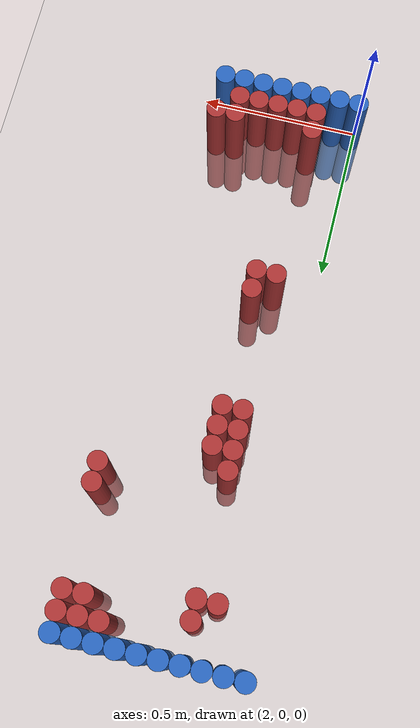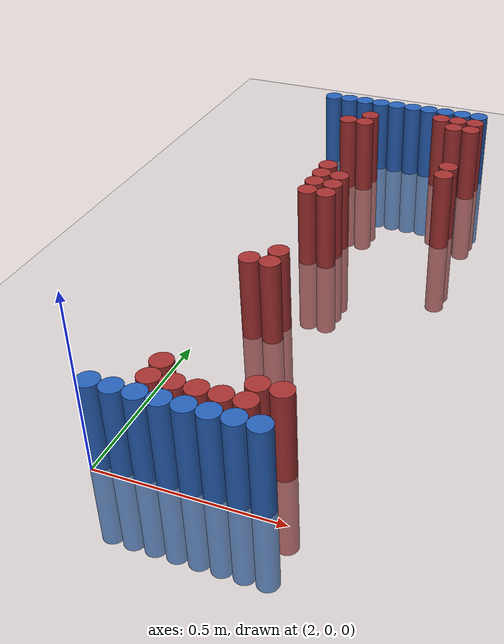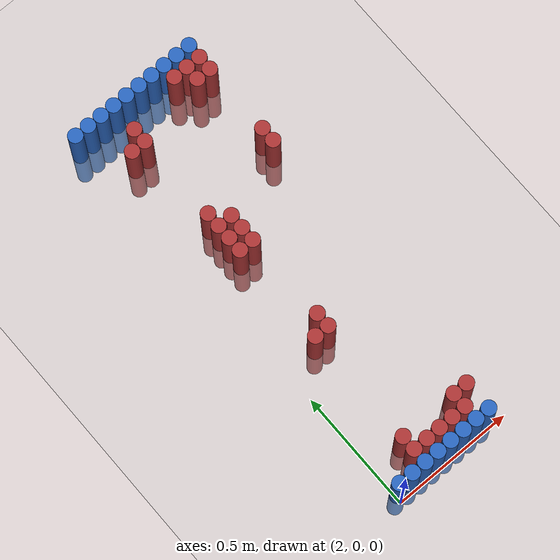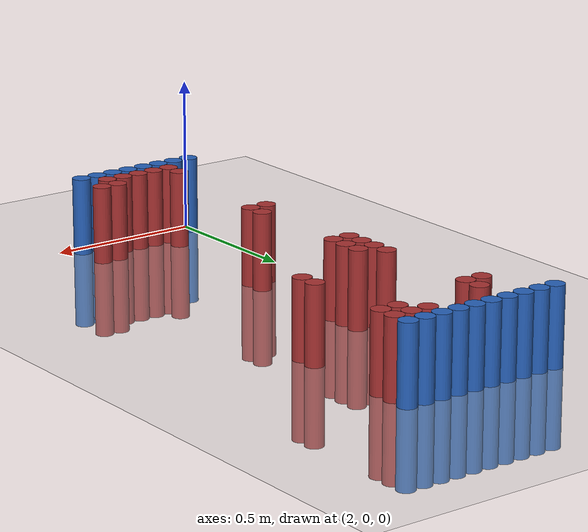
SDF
<sdf version="1.6">
 <world name="default">
  <model name="ground_plane">
   <static>1</static>
   <link name="link">
    <collision name="collision">
     <geometry><plane><normal>0 0 1</normal><size>100 100</size></plane></geometry>
     <surface><friction><ode><mu>100</mu><mu2>50</mu2></ode></friction></surface>
    </collision>
    <visual name="visual">
     <cast_shadows>0</cast_shadows>
     <geometry><plane><normal>0 0 1</normal><size>100 100</size></plane></geometry>
     <material>
      <script><uri>file://media/materials/scripts/gazebo.material</uri><name>Gazebo/Grey</name></script>
     </material>
    </visual>
   </link>
  </model>
  <model name="unit_cylinder_92">
   <static>1</static>
   <pose>1.950000 1.770000 0.000000 0.000000 0.000000 0.000000</pose>
   <link name="link">
    <inertial>
     <mass>1</mass>
     <inertia><ixx>0.145833</ixx><ixy>0</ixy><ixz>0</ixz><iyy>0.145833</iyy><iyz>0</iyz><izz>0.125</izz></inertia>
    </inertial>
    <collision name="collision">
     <geometry><cylinder><radius>0.030000</radius><length>0.5</length></cylinder></geometry>
    </collision>
    <visual name="visual">
     <geometry><cylinder><radius>0.030000</radius><length>0.5</length></cylinder></geometry>
     <material>
      <ambient>0.152000 0.379000 0.720000 1</ambient>
      <diffuse>0.152000 0.379000 0.720000 1</diffuse>
     </material>
     <material>
      <script><name>Gazebo/Grey</name><uri>file://media/materials/scripts/gazebo.material</uri></script>
     </material>
    </visual>
   </link>
  </model>
  <model name="unit_cylinder_93">
   <static>1</static>
   <pose>2.010000 0.030000 0.000000 0.000000 0.000000 0.000000</pose>
   <link name="link">
    <inertial>
     <mass>1</mass>
     <inertia><ixx>0.145833</ixx><ixy>0</ixy><ixz>0</ixz><iyy>0.145833</iyy><iyz>0</iyz><izz>0.125</izz></inertia>
    </inertial>
    <collision name="collision">
     <geometry><cylinder><radius>0.030000</radius><length>0.5</length></cylinder></geometry>
    </collision>
    <visual name="visual">
     <geometry><cylinder><radius>0.030000</radius><length>0.5</length></cylinder></geometry>
     <material>
      <ambient>0.152000 0.379000 0.720000 1</ambient>
      <diffuse>0.152000 0.379000 0.720000 1</diffuse>
     </material>
     <material>
      <script><name>Gazebo/Grey</name><uri>file://media/materials/scripts/gazebo.material</uri></script>
     </material>
    </visual>
   </link>
  </model>
  <model name="unit_cylinder_94">
   <static>1</static>
   <pose>2.010000 1.770000 0.000000 0.000000 0.000000 0.000000</pose>
   <link name="link">
    <inertial>
     <mass>1</mass>
     <inertia><ixx>0.145833</ixx><ixy>0</ixy><ixz>0</ixz><iyy>0.145833</iyy><iyz>0</iyz><izz>0.125</izz></inertia>
    </inertial>
    <collision name="collision">
     <geometry><cylinder><radius>0.030000</radius><length>0.5</length></cylinder></geometry>
    </collision>
    <visual name="visual">
     <geometry><cylinder><radius>0.030000</radius><length>0.5</length></cylinder></geometry>
     <material>
      <ambient>0.152000 0.379000 0.720000 1</ambient>
      <diffuse>0.152000 0.379000 0.720000 1</diffuse>
     </material>
     <material>
      <script><name>Gazebo/Grey</name><uri>file://media/materials/scripts/gazebo.material</uri></script>
     </material>
    </visual>
   </link>
  </model>
  <model name="unit_cylinder_95">
   <static>1</static>
   <pose>2.070000 1.770000 0.000000 0.000000 0.000000 0.000000</pose>
   <link name="link">
    <inertial>
     <mass>1</mass>
     <inertia><ixx>0.145833</ixx><ixy>0</ixy><ixz>0</ixz><iyy>0.145833</iyy><iyz>0</iyz><izz>0.125</izz></inertia>
    </inertial>
    <collision name="collision">
     <geometry><cylinder><radius>0.030000</radius><length>0.5</length></cylinder></geometry>
    </collision>
    <visual name="visual">
     <geometry><cylinder><radius>0.030000</radius><length>0.5</length></cylinder></geometry>
     <material>
      <ambient>0.152000 0.379000 0.720000 1</ambient>
      <diffuse>0.152000 0.379000 0.720000 1</diffuse>
     </material>
     <material>
      <script><name>Gazebo/Grey</name><uri>file://media/materials/scripts/gazebo.material</uri></script>
     </material>
    </visual>
   </link>
  </model>
  <model name="unit_cylinder_96">
   <static>1</static>
   <pose>2.130000 1.770000 0.000000 0.000000 0.000000 0.000000</pose>
   <link name="link">
    <inertial>
     <mass>1</mass>
     <inertia><ixx>0.145833</ixx><ixy>0</ixy><ixz>0</ixz><iyy>0.145833</iyy><iyz>0</iyz><izz>0.125</izz></inertia>
    </inertial>
    <collision name="collision">
     <geometry><cylinder><radius>0.030000</radius><length>0.5</length></cylinder></geometry>
    </collision>
    <visual name="visual">
     <geometry><cylinder><radius>0.030000</radius><length>0.5</length></cylinder></geometry>
     <material>
      <ambient>0.152000 0.379000 0.720000 1</ambient>
      <diffuse>0.152000 0.379000 0.720000 1</diffuse>
     </material>
     <material>
      <script><name>Gazebo/Grey</name><uri>file://media/materials/scripts/gazebo.material</uri></script>
     </material>
    </visual>
   </link>
  </model>
  <model name="unit_cylinder_97">
   <static>1</static>
   <pose>2.190000 1.770000 0.000000 0.000000 0.000000 0.000000</pose>
   <link name="link">
    <inertial>
     <mass>1</mass>
     <inertia><ixx>0.145833</ixx><ixy>0</ixy><ixz>0</ixz><iyy>0.145833</iyy><iyz>0</iyz><izz>0.125</izz></inertia>
    </inertial>
    <collision name="collision">
     <geometry><cylinder><radius>0.030000</radius><length>0.5</length></cylinder></geometry>
    </collision>
    <visual name="visual">
     <geometry><cylinder><radius>0.030000</radius><length>0.5</length></cylinder></geometry>
     <material>
      <ambient>0.152000 0.379000 0.720000 1</ambient>
      <diffuse>0.152000 0.379000 0.720000 1</diffuse>
     </material>
     <material>
      <script><name>Gazebo/Grey</name><uri>file://media/materials/scripts/gazebo.material</uri></script>
     </material>
    </visual>
   </link>
  </model>
  <model name="unit_cylinder_98">
   <static>1</static>
   <pose>2.250000 1.770000 0.000000 0.000000 0.000000 0.000000</pose>
   <link name="link">
    <inertial>
     <mass>1</mass>
     <inertia><ixx>0.145833</ixx><ixy>0</ixy><ixz>0</ixz><iyy>0.145833</iyy><iyz>0</iyz><izz>0.125</izz></inertia>
    </inertial>
    <collision name="collision">
     <geometry><cylinder><radius>0.030000</radius><length>0.5</length></cylinder></geometry>
    </collision>
    <visual name="visual">
     <geometry><cylinder><radius>0.030000</radius><length>0.5</length></cylinder></geometry>
     <material>
      <ambient>0.152000 0.379000 0.720000 1</ambient>
      <diffuse>0.152000 0.379000 0.720000 1</diffuse>
     </material>
     <material>
      <script><name>Gazebo/Grey</name><uri>file://media/materials/scripts/gazebo.material</uri></script>
     </material>
    </visual>
   </link>
  </model>
  <model name="unit_cylinder_99">
   <static>1</static>
   <pose>2.310000 1.770000 0.000000 0.000000 0.000000 0.000000</pose>
   <link name="link">
    <inertial>
     <mass>1</mass>
     <inertia><ixx>0.145833</ixx><ixy>0</ixy><ixz>0</ixz><iyy>0.145833</iyy><iyz>0</iyz><izz>0.125</izz></inertia>
    </inertial>
    <collision name="collision">
     <geometry><cylinder><radius>0.030000</radius><length>0.5</length></cylinder></geometry>
    </collision>
    <visual name="visual">
     <geometry><cylinder><radius>0.030000</radius><length>0.5</length></cylinder></geometry>
     <material>
      <ambient>0.152000 0.379000 0.720000 1</ambient>
      <diffuse>0.152000 0.379000 0.720000 1</diffuse>
     </material>
     <material>
      <script><name>Gazebo/Grey</name><uri>file://media/materials/scripts/gazebo.material</uri></script>
     </material>
    </visual>
   </link>
  </model>
  <model name="unit_cylinder_100">
   <static>1</static>
   <pose>2.370000 1.770000 0.000000 0.000000 0.000000 0.000000</pose>
   <link name="link">
    <inertial>
     <mass>1</mass>
     <inertia><ixx>0.145833</ixx><ixy>0</ixy><ixz>0</ixz><iyy>0.145833</iyy><iyz>0</iyz><izz>0.125</izz></inertia>
    </inertial>
    <collision name="collision">
     <geometry><cylinder><radius>0.030000</radius><length>0.5</length></cylinder></geometry>
    </collision>
    <visual name="visual">
     <geometry><cylinder><radius>0.030000</radius><length>0.5</length></cylinder></geometry>
     <material>
      <ambient>0.152000 0.379000 0.720000 1</ambient>
      <diffuse>0.152000 0.379000 0.720000 1</diffuse>
     </material>
     <material>
      <script><name>Gazebo/Grey</name><uri>file://media/materials/scripts/gazebo.material</uri></script>
     </material>
    </visual>
   </link>
  </model>
  <model name="unit_cylinder_101">
   <static>1</static>
   <pose>2.430000 1.770000 0.000000 0.000000 0.000000 0.000000</pose>
   <link name="link">
    <inertial>
     <mass>1</mass>
     <inertia><ixx>0.145833</ixx><ixy>0</ixy><ixz>0</ixz><iyy>0.145833</iyy><iyz>0</iyz><izz>0.125</izz></inertia>
    </inertial>
    <collision name="collision">
     <geometry><cylinder><radius>0.030000</radius><length>0.5</length></cylinder></geometry>
    </collision>
    <visual name="visual">
     <geometry><cylinder><radius>0.030000</radius><length>0.5</length></cylinder></geometry>
     <material>
      <ambient>0.152000 0.379000 0.720000 1</ambient>
      <diffuse>0.152000 0.379000 0.720000 1</diffuse>
     </material>
     <material>
      <script><name>Gazebo/Grey</name><uri>file://media/materials/scripts/gazebo.material</uri></script>
     </material>
    </visual>
   </link>
  </model>
  <model name="unit_cylinder_102">
   <static>1</static>
   <pose>2.490000 1.770000 0.000000 0.000000 0.000000 0.000000</pose>
   <link name="link">
    <inertial>
     <mass>1</mass>
     <inertia><ixx>0.145833</ixx><ixy>0</ixy><ixz>0</ixz><iyy>0.145833</iyy><iyz>0</iyz><izz>0.125</izz></inertia>
    </inertial>
    <collision name="collision">
     <geometry><cylinder><radius>0.030000</radius><length>0.5</length></cylinder></geometry>
    </collision>
    <visual name="visual">
     <geometry><cylinder><radius>0.030000</radius><length>0.5</length></cylinder></geometry>
     <material>
      <ambient>0.152000 0.379000 0.720000 1</ambient>
      <diffuse>0.152000 0.379000 0.720000 1</diffuse>
     </material>
     <material>
      <script><name>Gazebo/Grey</name><uri>file://media/materials/scripts/gazebo.material</uri></script>
     </material>
    </visual>
   </link>
  </model>
  <model name="unit_cylinder_125">
   <static>1</static>
   <pose>2.370000 1.710000 0.000000 0.000000 0.000000 0.000000</pose>
   <link name="link">
    <inertial>
     <mass>1</mass>
     <inertia><ixx>0.145833</ixx><ixy>0</ixy><ixz>0</ixz><iyy>0.145833</iyy><iyz>0</iyz><izz>0.125</izz></inertia>
    </inertial>
    <collision name="collision">
     <geometry><cylinder><radius>0.030000</radius><length>0.5</length></cylinder></geometry>
    </collision>
    <visual name="visual">
     <geometry><cylinder><radius>0.030000</radius><length>0.5</length></cylinder></geometry>
     <material>
      <ambient>0.648000 0.192000 0.192000 1</ambient>
      <diffuse>0.648000 0.192000 0.192000 1</diffuse>
     </material>
     <material>
      <script><name>Gazebo/Grey</name><uri>file://media/materials/scripts/gazebo.material</uri></script>
     </material>
    </visual>
   </link>
  </model>
  <model name="unit_cylinder_126">
   <static>1</static>
   <pose>2.430000 1.710000 0.000000 0.000000 0.000000 0.000000</pose>
   <link name="link">
    <inertial>
     <mass>1</mass>
     <inertia><ixx>0.145833</ixx><ixy>0</ixy><ixz>0</ixz><iyy>0.145833</iyy><iyz>0</iyz><izz>0.125</izz></inertia>
    </inertial>
    <collision name="collision">
     <geometry><cylinder><radius>0.030000</radius><length>0.5</length></cylinder></geometry>
    </collision>
    <visual name="visual">
     <geometry><cylinder><radius>0.030000</radius><length>0.5</length></cylinder></geometry>
     <material>
      <ambient>0.648000 0.192000 0.192000 1</ambient>
      <diffuse>0.648000 0.192000 0.192000 1</diffuse>
     </material>
     <material>
      <script><name>Gazebo/Grey</name><uri>file://media/materials/scripts/gazebo.material</uri></script>
     </material>
    </visual>
   </link>
  </model>
  <model name="unit_cylinder_127">
   <static>1</static>
   <pose>2.490000 1.710000 0.000000 0.000000 0.000000 0.000000</pose>
   <link name="link">
    <inertial>
     <mass>1</mass>
     <inertia><ixx>0.145833</ixx><ixy>0</ixy><ixz>0</ixz><iyy>0.145833</iyy><iyz>0</iyz><izz>0.125</izz></inertia>
    </inertial>
    <collision name="collision">
     <geometry><cylinder><radius>0.030000</radius><length>0.5</length></cylinder></geometry>
    </collision>
    <visual name="visual">
     <geometry><cylinder><radius>0.030000</radius><length>0.5</length></cylinder></geometry>
     <material>
      <ambient>0.648000 0.192000 0.192000 1</ambient>
      <diffuse>0.648000 0.192000 0.192000 1</diffuse>
     </material>
     <material>
      <script><name>Gazebo/Grey</name><uri>file://media/materials/scripts/gazebo.material</uri></script>
     </material>
    </visual>
   </link>
  </model>
  <model name="unit_cylinder_135">
   <static>1</static>
   <pose>2.130000 1.650000 0.000000 0.000000 0.000000 0.000000</pose>
   <link name="link">
    <inertial>
     <mass>1</mass>
     <inertia><ixx>0.145833</ixx><ixy>0</ixy><ixz>0</ixz><iyy>0.145833</iyy><iyz>0</iyz><izz>0.125</izz></inertia>
    </inertial>
    <collision name="collision">
     <geometry><cylinder><radius>0.030000</radius><length>0.5</length></cylinder></geometry>
    </collision>
    <visual name="visual">
     <geometry><cylinder><radius>0.030000</radius><length>0.5</length></cylinder></geometry>
     <material>
      <ambient>0.648000 0.192000 0.192000 1</ambient>
      <diffuse>0.648000 0.192000 0.192000 1</diffuse>
     </material>
     <material>
      <script><name>Gazebo/Grey</name><uri>file://media/materials/scripts/gazebo.material</uri></script>
     </material>
    </visual>
   </link>
  </model>
  <model name="unit_cylinder_136">
   <static>1</static>
   <pose>2.430000 1.650000 0.000000 0.000000 0.000000 0.000000</pose>
   <link name="link">
    <inertial>
     <mass>1</mass>
     <inertia><ixx>0.145833</ixx><ixy>0</ixy><ixz>0</ixz><iyy>0.145833</iyy><iyz>0</iyz><izz>0.125</izz></inertia>
    </inertial>
    <collision name="collision">
     <geometry><cylinder><radius>0.030000</radius><length>0.5</length></cylinder></geometry>
    </collision>
    <visual name="visual">
     <geometry><cylinder><radius>0.030000</radius><length>0.5</length></cylinder></geometry>
     <material>
      <ambient>0.648000 0.192000 0.192000 1</ambient>
      <diffuse>0.648000 0.192000 0.192000 1</diffuse>
     </material>
     <material>
      <script><name>Gazebo/Grey</name><uri>file://media/materials/scripts/gazebo.material</uri></script>
     </material>
    </visual>
   </link>
  </model>
  <model name="unit_cylinder_137">
   <static>1</static>
   <pose>2.490000 1.650000 0.000000 0.000000 0.000000 0.000000</pose>
   <link name="link">
    <inertial>
     <mass>1</mass>
     <inertia><ixx>0.145833</ixx><ixy>0</ixy><ixz>0</ixz><iyy>0.145833</iyy><iyz>0</iyz><izz>0.125</izz></inertia>
    </inertial>
    <collision name="collision">
     <geometry><cylinder><radius>0.030000</radius><length>0.5</length></cylinder></geometry>
    </collision>
    <visual name="visual">
     <geometry><cylinder><radius>0.030000</radius><length>0.5</length></cylinder></geometry>
     <material>
      <ambient>0.648000 0.192000 0.192000 1</ambient>
      <diffuse>0.648000 0.192000 0.192000 1</diffuse>
     </material>
     <material>
      <script><name>Gazebo/Grey</name><uri>file://media/materials/scripts/gazebo.material</uri></script>
     </material>
    </visual>
   </link>
  </model>
  <model name="unit_cylinder_141">
   <static>1</static>
   <pose>2.070000 1.590000 0.000000 0.000000 0.000000 0.000000</pose>
   <link name="link">
    <inertial>
     <mass>1</mass>
     <inertia><ixx>0.145833</ixx><ixy>0</ixy><ixz>0</ixz><iyy>0.145833</iyy><iyz>0</iyz><izz>0.125</izz></inertia>
    </inertial>
    <collision name="collision">
     <geometry><cylinder><radius>0.030000</radius><length>0.5</length></cylinder></geometry>
    </collision>
    <visual name="visual">
     <geometry><cylinder><radius>0.030000</radius><length>0.5</length></cylinder></geometry>
     <material>
      <ambient>0.648000 0.192000 0.192000 1</ambient>
      <diffuse>0.648000 0.192000 0.192000 1</diffuse>
     </material>
     <material>
      <script><name>Gazebo/Grey</name><uri>file://media/materials/scripts/gazebo.material</uri></script>
     </material>
    </visual>
   </link>
  </model>
  <model name="unit_cylinder_142">
   <static>1</static>
   <pose>2.130000 1.590000 0.000000 0.000000 0.000000 0.000000</pose>
   <link name="link">
    <inertial>
     <mass>1</mass>
     <inertia><ixx>0.145833</ixx><ixy>0</ixy><ixz>0</ixz><iyy>0.145833</iyy><iyz>0</iyz><izz>0.125</izz></inertia>
    </inertial>
    <collision name="collision">
     <geometry><cylinder><radius>0.030000</radius><length>0.5</length></cylinder></geometry>
    </collision>
    <visual name="visual">
     <geometry><cylinder><radius>0.030000</radius><length>0.5</length></cylinder></geometry>
     <material>
      <ambient>0.648000 0.192000 0.192000 1</ambient>
      <diffuse>0.648000 0.192000 0.192000 1</diffuse>
     </material>
     <material>
      <script><name>Gazebo/Grey</name><uri>file://media/materials/scripts/gazebo.material</uri></script>
     </material>
    </visual>
   </link>
  </model>
  <model name="unit_cylinder_160">
   <static>1</static>
   <pose>2.490000 1.350000 0.000000 0.000000 0.000000 0.000000</pose>
   <link name="link">
    <inertial>
     <mass>1</mass>
     <inertia><ixx>0.145833</ixx><ixy>0</ixy><ixz>0</ixz><iyy>0.145833</iyy><iyz>0</iyz><izz>0.125</izz></inertia>
    </inertial>
    <collision name="collision">
     <geometry><cylinder><radius>0.030000</radius><length>0.5</length></cylinder></geometry>
    </collision>
    <visual name="visual">
     <geometry><cylinder><radius>0.030000</radius><length>0.5</length></cylinder></geometry>
     <material>
      <ambient>0.648000 0.192000 0.192000 1</ambient>
      <diffuse>0.648000 0.192000 0.192000 1</diffuse>
     </material>
     <material>
      <script><name>Gazebo/Grey</name><uri>file://media/materials/scripts/gazebo.material</uri></script>
     </material>
    </visual>
   </link>
  </model>
  <model name="unit_cylinder_169">
   <static>1</static>
   <pose>2.490000 1.290000 0.000000 0.000000 0.000000 0.000000</pose>
   <link name="link">
    <inertial>
     <mass>1</mass>
     <inertia><ixx>0.145833</ixx><ixy>0</ixy><ixz>0</ixz><iyy>0.145833</iyy><iyz>0</iyz><izz>0.125</izz></inertia>
    </inertial>
    <collision name="collision">
     <geometry><cylinder><radius>0.030000</radius><length>0.5</length></cylinder></geometry>
    </collision>
    <visual name="visual">
     <geometry><cylinder><radius>0.030000</radius><length>0.5</length></cylinder></geometry>
     <material>
      <ambient>0.648000 0.192000 0.192000 1</ambient>
      <diffuse>0.648000 0.192000 0.192000 1</diffuse>
     </material>
     <material>
      <script><name>Gazebo/Grey</name><uri>file://media/materials/scripts/gazebo.material</uri></script>
     </material>
    </visual>
   </link>
  </model>
  <model name="unit_cylinder_179">
   <static>1</static>
   <pose>2.130000 1.230000 0.000000 0.000000 0.000000 0.000000</pose>
   <link name="link">
    <inertial>
     <mass>1</mass>
     <inertia><ixx>0.145833</ixx><ixy>0</ixy><ixz>0</ixz><iyy>0.145833</iyy><iyz>0</iyz><izz>0.125</izz></inertia>
    </inertial>
    <collision name="collision">
     <geometry><cylinder><radius>0.030000</radius><length>0.5</length></cylinder></geometry>
    </collision>
    <visual name="visual">
     <geometry><cylinder><radius>0.030000</radius><length>0.5</length></cylinder></geometry>
     <material>
      <ambient>0.648000 0.192000 0.192000 1</ambient>
      <diffuse>0.648000 0.192000 0.192000 1</diffuse>
     </material>
     <material>
      <script><name>Gazebo/Grey</name><uri>file://media/materials/scripts/gazebo.material</uri></script>
     </material>
    </visual>
   </link>
  </model>
  <model name="unit_cylinder_189">
   <static>1</static>
   <pose>2.130000 1.170000 0.000000 0.000000 0.000000 0.000000</pose>
   <link name="link">
    <inertial>
     <mass>1</mass>
     <inertia><ixx>0.145833</ixx><ixy>0</ixy><ixz>0</ixz><iyy>0.145833</iyy><iyz>0</iyz><izz>0.125</izz></inertia>
    </inertial>
    <collision name="collision">
     <geometry><cylinder><radius>0.030000</radius><length>0.5</length></cylinder></geometry>
    </collision>
    <visual name="visual">
     <geometry><cylinder><radius>0.030000</radius><length>0.5</length></cylinder></geometry>
     <material>
      <ambient>0.648000 0.192000 0.192000 1</ambient>
      <diffuse>0.648000 0.192000 0.192000 1</diffuse>
     </material>
     <material>
      <script><name>Gazebo/Grey</name><uri>file://media/materials/scripts/gazebo.material</uri></script>
     </material>
    </visual>
   </link>
  </model>
  <model name="unit_cylinder_190">
   <static>1</static>
   <pose>2.190000 1.170000 0.000000 0.000000 0.000000 0.000000</pose>
   <link name="link">
    <inertial>
     <mass>1</mass>
     <inertia><ixx>0.145833</ixx><ixy>0</ixy><ixz>0</ixz><iyy>0.145833</iyy><iyz>0</iyz><izz>0.125</izz></inertia>
    </inertial>
    <collision name="collision">
     <geometry><cylinder><radius>0.030000</radius><length>0.5</length></cylinder></geometry>
    </collision>
    <visual name="visual">
     <geometry><cylinder><radius>0.030000</radius><length>0.5</length></cylinder></geometry>
     <material>
      <ambient>0.648000 0.192000 0.192000 1</ambient>
      <diffuse>0.648000 0.192000 0.192000 1</diffuse>
     </material>
     <material>
      <script><name>Gazebo/Grey</name><uri>file://media/materials/scripts/gazebo.material</uri></script>
     </material>
    </visual>
   </link>
  </model>
  <model name="unit_cylinder_199">
   <static>1</static>
   <pose>2.130000 1.110000 0.000000 0.000000 0.000000 0.000000</pose>
   <link name="link">
    <inertial>
     <mass>1</mass>
     <inertia><ixx>0.145833</ixx><ixy>0</ixy><ixz>0</ixz><iyy>0.145833</iyy><iyz>0</iyz><izz>0.125</izz></inertia>
    </inertial>
    <collision name="collision">
     <geometry><cylinder><radius>0.030000</radius><length>0.5</length></cylinder></geometry>
    </collision>
    <visual name="visual">
     <geometry><cylinder><radius>0.030000</radius><length>0.5</length></cylinder></geometry>
     <material>
      <ambient>0.648000 0.192000 0.192000 1</ambient>
      <diffuse>0.648000 0.192000 0.192000 1</diffuse>
     </material>
     <material>
      <script><name>Gazebo/Grey</name><uri>file://media/materials/scripts/gazebo.material</uri></script>
     </material>
    </visual>
   </link>
  </model>
  <model name="unit_cylinder_200">
   <static>1</static>
   <pose>2.190000 1.110000 0.000000 0.000000 0.000000 0.000000</pose>
   <link name="link">
    <inertial>
     <mass>1</mass>
     <inertia><ixx>0.145833</ixx><ixy>0</ixy><ixz>0</ixz><iyy>0.145833</iyy><iyz>0</iyz><izz>0.125</izz></inertia>
    </inertial>
    <collision name="collision">
     <geometry><cylinder><radius>0.030000</radius><length>0.5</length></cylinder></geometry>
    </collision>
    <visual name="visual">
     <geometry><cylinder><radius>0.030000</radius><length>0.5</length></cylinder></geometry>
     <material>
      <ambient>0.648000 0.192000 0.192000 1</ambient>
      <diffuse>0.648000 0.192000 0.192000 1</diffuse>
     </material>
     <material>
      <script><name>Gazebo/Grey</name><uri>file://media/materials/scripts/gazebo.material</uri></script>
     </material>
    </visual>
   </link>
  </model>
  <model name="unit_cylinder_203">
   <static>1</static>
   <pose>2.130000 1.050000 0.000000 0.000000 0.000000 0.000000</pose>
   <link name="link">
    <inertial>
     <mass>1</mass>
     <inertia><ixx>0.145833</ixx><ixy>0</ixy><ixz>0</ixz><iyy>0.145833</iyy><iyz>0</iyz><izz>0.125</izz></inertia>
    </inertial>
    <collision name="collision">
     <geometry><cylinder><radius>0.030000</radius><length>0.5</length></cylinder></geometry>
    </collision>
    <visual name="visual">
     <geometry><cylinder><radius>0.030000</radius><length>0.5</length></cylinder></geometry>
     <material>
      <ambient>0.648000 0.192000 0.192000 1</ambient>
      <diffuse>0.648000 0.192000 0.192000 1</diffuse>
     </material>
     <material>
      <script><name>Gazebo/Grey</name><uri>file://media/materials/scripts/gazebo.material</uri></script>
     </material>
    </visual>
   </link>
  </model>
  <model name="unit_cylinder_204">
   <static>1</static>
   <pose>2.190000 1.050000 0.000000 0.000000 0.000000 0.000000</pose>
   <link name="link">
    <inertial>
     <mass>1</mass>
     <inertia><ixx>0.145833</ixx><ixy>0</ixy><ixz>0</ixz><iyy>0.145833</iyy><iyz>0</iyz><izz>0.125</izz></inertia>
    </inertial>
    <collision name="collision">
     <geometry><cylinder><radius>0.030000</radius><length>0.5</length></cylinder></geometry>
    </collision>
    <visual name="visual">
     <geometry><cylinder><radius>0.030000</radius><length>0.5</length></cylinder></geometry>
     <material>
      <ambient>0.648000 0.192000 0.192000 1</ambient>
      <diffuse>0.648000 0.192000 0.192000 1</diffuse>
     </material>
     <material>
      <script><name>Gazebo/Grey</name><uri>file://media/materials/scripts/gazebo.material</uri></script>
     </material>
    </visual>
   </link>
  </model>
  <model name="unit_cylinder_209">
   <static>1</static>
   <pose>2.190000 0.690000 0.000000 0.000000 0.000000 0.000000</pose>
   <link name="link">
    <inertial>
     <mass>1</mass>
     <inertia><ixx>0.145833</ixx><ixy>0</ixy><ixz>0</ixz><iyy>0.145833</iyy><iyz>0</iyz><izz>0.125</izz></inertia>
    </inertial>
    <collision name="collision">
     <geometry><cylinder><radius>0.030000</radius><length>0.5</length></cylinder></geometry>
    </collision>
    <visual name="visual">
     <geometry><cylinder><radius>0.030000</radius><length>0.5</length></cylinder></geometry>
     <material>
      <ambient>0.648000 0.192000 0.192000 1</ambient>
      <diffuse>0.648000 0.192000 0.192000 1</diffuse>
     </material>
     <material>
      <script><name>Gazebo/Grey</name><uri>file://media/materials/scripts/gazebo.material</uri></script>
     </material>
    </visual>
   </link>
  </model>
  <model name="unit_cylinder_210">
   <static>1</static>
   <pose>2.130000 0.630000 0.000000 0.000000 0.000000 0.000000</pose>
   <link name="link">
    <inertial>
     <mass>1</mass>
     <inertia><ixx>0.145833</ixx><ixy>0</ixy><ixz>0</ixz><iyy>0.145833</iyy><iyz>0</iyz><izz>0.125</izz></inertia>
    </inertial>
    <collision name="collision">
     <geometry><cylinder><radius>0.030000</radius><length>0.5</length></cylinder></geometry>
    </collision>
    <visual name="visual">
     <geometry><cylinder><radius>0.030000</radius><length>0.5</length></cylinder></geometry>
     <material>
      <ambient>0.648000 0.192000 0.192000 1</ambient>
      <diffuse>0.648000 0.192000 0.192000 1</diffuse>
     </material>
     <material>
      <script><name>Gazebo/Grey</name><uri>file://media/materials/scripts/gazebo.material</uri></script>
     </material>
    </visual>
   </link>
  </model>
  <model name="unit_cylinder_211">
   <static>1</static>
   <pose>2.190000 0.630000 0.000000 0.000000 0.000000 0.000000</pose>
   <link name="link">
    <inertial>
     <mass>1</mass>
     <inertia><ixx>0.145833</ixx><ixy>0</ixy><ixz>0</ixz><iyy>0.145833</iyy><iyz>0</iyz><izz>0.125</izz></inertia>
    </inertial>
    <collision name="collision">
     <geometry><cylinder><radius>0.030000</radius><length>0.5</length></cylinder></geometry>
    </collision>
    <visual name="visual">
     <geometry><cylinder><radius>0.030000</radius><length>0.5</length></cylinder></geometry>
     <material>
      <ambient>0.648000 0.192000 0.192000 1</ambient>
      <diffuse>0.648000 0.192000 0.192000 1</diffuse>
     </material>
     <material>
      <script><name>Gazebo/Grey</name><uri>file://media/materials/scripts/gazebo.material</uri></script>
     </material>
    </visual>
   </link>
  </model>
  <model name="unit_cylinder_219">
   <static>1</static>
   <pose>2.130000 0.150000 0.000000 0.000000 0.000000 0.000000</pose>
   <link name="link">
    <inertial>
     <mass>1</mass>
     <inertia><ixx>0.145833</ixx><ixy>0</ixy><ixz>0</ixz><iyy>0.145833</iyy><iyz>0</iyz><izz>0.125</izz></inertia>
    </inertial>
    <collision name="collision">
     <geometry><cylinder><radius>0.030000</radius><length>0.5</length></cylinder></geometry>
    </collision>
    <visual name="visual">
     <geometry><cylinder><radius>0.030000</radius><length>0.5</length></cylinder></geometry>
     <material>
      <ambient>0.648000 0.192000 0.192000 1</ambient>
      <diffuse>0.648000 0.192000 0.192000 1</diffuse>
     </material>
     <material>
      <script><name>Gazebo/Grey</name><uri>file://media/materials/scripts/gazebo.material</uri></script>
     </material>
    </visual>
   </link>
  </model>
  <model name="unit_cylinder_220">
   <static>1</static>
   <pose>2.370000 0.150000 0.000000 0.000000 0.000000 0.000000</pose>
   <link name="link">
    <inertial>
     <mass>1</mass>
     <inertia><ixx>0.145833</ixx><ixy>0</ixy><ixz>0</ixz><iyy>0.145833</iyy><iyz>0</iyz><izz>0.125</izz></inertia>
    </inertial>
    <collision name="collision">
     <geometry><cylinder><radius>0.030000</radius><length>0.5</length></cylinder></geometry>
    </collision>
    <visual name="visual">
     <geometry><cylinder><radius>0.030000</radius><length>0.5</length></cylinder></geometry>
     <material>
      <ambient>0.648000 0.192000 0.192000 1</ambient>
      <diffuse>0.648000 0.192000 0.192000 1</diffuse>
     </material>
     <material>
      <script><name>Gazebo/Grey</name><uri>file://media/materials/scripts/gazebo.material</uri></script>
     </material>
    </visual>
   </link>
  </model>
  <model name="unit_cylinder_221">
   <static>1</static>
   <pose>2.430000 0.150000 0.000000 0.000000 0.000000 0.000000</pose>
   <link name="link">
    <inertial>
     <mass>1</mass>
     <inertia><ixx>0.145833</ixx><ixy>0</ixy><ixz>0</ixz><iyy>0.145833</iyy><iyz>0</iyz><izz>0.125</izz></inertia>
    </inertial>
    <collision name="collision">
     <geometry><cylinder><radius>0.030000</radius><length>0.5</length></cylinder></geometry>
    </collision>
    <visual name="visual">
     <geometry><cylinder><radius>0.030000</radius><length>0.5</length></cylinder></geometry>
     <material>
      <ambient>0.648000 0.192000 0.192000 1</ambient>
      <diffuse>0.648000 0.192000 0.192000 1</diffuse>
     </material>
     <material>
      <script><name>Gazebo/Grey</name><uri>file://media/materials/scripts/gazebo.material</uri></script>
     </material>
    </visual>
   </link>
  </model>
  <model name="unit_cylinder_229">
   <static>1</static>
   <pose>2.130000 0.090000 0.000000 0.000000 0.000000 0.000000</pose>
   <link name="link">
    <inertial>
     <mass>1</mass>
     <inertia><ixx>0.145833</ixx><ixy>0</ixy><ixz>0</ixz><iyy>0.145833</iyy><iyz>0</iyz><izz>0.125</izz></inertia>
    </inertial>
    <collision name="collision">
     <geometry><cylinder><radius>0.030000</radius><length>0.5</length></cylinder></geometry>
    </collision>
    <visual name="visual">
     <geometry><cylinder><radius>0.030000</radius><length>0.5</length></cylinder></geometry>
     <material>
      <ambient>0.648000 0.192000 0.192000 1</ambient>
      <diffuse>0.648000 0.192000 0.192000 1</diffuse>
     </material>
     <material>
      <script><name>Gazebo/Grey</name><uri>file://media/materials/scripts/gazebo.material</uri></script>
     </material>
    </visual>
   </link>
  </model>
  <model name="unit_cylinder_230">
   <static>1</static>
   <pose>2.190000 0.090000 0.000000 0.000000 0.000000 0.000000</pose>
   <link name="link">
    <inertial>
     <mass>1</mass>
     <inertia><ixx>0.145833</ixx><ixy>0</ixy><ixz>0</ixz><iyy>0.145833</iyy><iyz>0</iyz><izz>0.125</izz></inertia>
    </inertial>
    <collision name="collision">
     <geometry><cylinder><radius>0.030000</radius><length>0.5</length></cylinder></geometry>
    </collision>
    <visual name="visual">
     <geometry><cylinder><radius>0.030000</radius><length>0.5</length></cylinder></geometry>
     <material>
      <ambient>0.648000 0.192000 0.192000 1</ambient>
      <diffuse>0.648000 0.192000 0.192000 1</diffuse>
     </material>
     <material>
      <script><name>Gazebo/Grey</name><uri>file://media/materials/scripts/gazebo.material</uri></script>
     </material>
    </visual>
   </link>
  </model>
  <model name="unit_cylinder_231">
   <static>1</static>
   <pose>2.250000 0.090000 0.000000 0.000000 0.000000 0.000000</pose>
   <link name="link">
    <inertial>
     <mass>1</mass>
     <inertia><ixx>0.145833</ixx><ixy>0</ixy><ixz>0</ixz><iyy>0.145833</iyy><iyz>0</iyz><izz>0.125</izz></inertia>
    </inertial>
    <collision name="collision">
     <geometry><cylinder><radius>0.030000</radius><length>0.5</length></cylinder></geometry>
    </collision>
    <visual name="visual">
     <geometry><cylinder><radius>0.030000</radius><length>0.5</length></cylinder></geometry>
     <material>
      <ambient>0.648000 0.192000 0.192000 1</ambient>
      <diffuse>0.648000 0.192000 0.192000 1</diffuse>
     </material>
     <material>
      <script><name>Gazebo/Grey</name><uri>file://media/materials/scripts/gazebo.material</uri></script>
     </material>
    </visual>
   </link>
  </model>
  <model name="unit_cylinder_232">
   <static>1</static>
   <pose>2.310000 0.090000 0.000000 0.000000 0.000000 0.000000</pose>
   <link name="link">
    <inertial>
     <mass>1</mass>
     <inertia><ixx>0.145833</ixx><ixy>0</ixy><ixz>0</ixz><iyy>0.145833</iyy><iyz>0</iyz><izz>0.125</izz></inertia>
    </inertial>
    <collision name="collision">
     <geometry><cylinder><radius>0.030000</radius><length>0.5</length></cylinder></geometry>
    </collision>
    <visual name="visual">
     <geometry><cylinder><radius>0.030000</radius><length>0.5</length></cylinder></geometry>
     <material>
      <ambient>0.648000 0.192000 0.192000 1</ambient>
      <diffuse>0.648000 0.192000 0.192000 1</diffuse>
     </material>
     <material>
      <script><name>Gazebo/Grey</name><uri>file://media/materials/scripts/gazebo.material</uri></script>
     </material>
    </visual>
   </link>
  </model>
  <model name="unit_cylinder_233">
   <static>1</static>
   <pose>2.370000 0.090000 0.000000 0.000000 0.000000 0.000000</pose>
   <link name="link">
    <inertial>
     <mass>1</mass>
     <inertia><ixx>0.145833</ixx><ixy>0</ixy><ixz>0</ixz><iyy>0.145833</iyy><iyz>0</iyz><izz>0.125</izz></inertia>
    </inertial>
    <collision name="collision">
     <geometry><cylinder><radius>0.030000</radius><length>0.5</length></cylinder></geometry>
    </collision>
    <visual name="visual">
     <geometry><cylinder><radius>0.030000</radius><length>0.5</length></cylinder></geometry>
     <material>
      <ambient>0.648000 0.192000 0.192000 1</ambient>
      <diffuse>0.648000 0.192000 0.192000 1</diffuse>
     </material>
     <material>
      <script><name>Gazebo/Grey</name><uri>file://media/materials/scripts/gazebo.material</uri></script>
     </material>
    </visual>
   </link>
  </model>
  <model name="unit_cylinder_246">
   <static>1</static>
   <pose>2.070000 0.030000 0.000000 0.000000 0.000000 0.000000</pose>
   <link name="link">
    <inertial>
     <mass>1</mass>
     <inertia><ixx>0.145833</ixx><ixy>0</ixy><ixz>0</ixz><iyy>0.145833</iyy><iyz>0</iyz><izz>0.125</izz></inertia>
    </inertial>
    <collision name="collision">
     <geometry><cylinder><radius>0.030000</radius><length>0.5</length></cylinder></geometry>
    </collision>
    <visual name="visual">
     <geometry><cylinder><radius>0.030000</radius><length>0.5</length></cylinder></geometry>
     <material>
      <ambient>0.152000 0.379000 0.720000 1</ambient>
      <diffuse>0.152000 0.379000 0.720000 1</diffuse>
     </material>
     <material>
      <script><name>Gazebo/Grey</name><uri>file://media/materials/scripts/gazebo.material</uri></script>
     </material>
    </visual>
   </link>
  </model>
  <model name="unit_cylinder_247">
   <static>1</static>
   <pose>2.130000 0.030000 0.000000 0.000000 0.000000 0.000000</pose>
   <link name="link">
    <inertial>
     <mass>1</mass>
     <inertia><ixx>0.145833</ixx><ixy>0</ixy><ixz>0</ixz><iyy>0.145833</iyy><iyz>0</iyz><izz>0.125</izz></inertia>
    </inertial>
    <collision name="collision">
     <geometry><cylinder><radius>0.030000</radius><length>0.5</length></cylinder></geometry>
    </collision>
    <visual name="visual">
     <geometry><cylinder><radius>0.030000</radius><length>0.5</length></cylinder></geometry>
     <material>
      <ambient>0.152000 0.379000 0.720000 1</ambient>
      <diffuse>0.152000 0.379000 0.720000 1</diffuse>
     </material>
     <material>
      <script><name>Gazebo/Grey</name><uri>file://media/materials/scripts/gazebo.material</uri></script>
     </material>
    </visual>
   </link>
  </model>
  <model name="unit_cylinder_248">
   <static>1</static>
   <pose>2.190000 0.030000 0.000000 0.000000 0.000000 0.000000</pose>
   <link name="link">
    <inertial>
     <mass>1</mass>
     <inertia><ixx>0.145833</ixx><ixy>0</ixy><ixz>0</ixz><iyy>0.145833</iyy><iyz>0</iyz><izz>0.125</izz></inertia>
    </inertial>
    <collision name="collision">
     <geometry><cylinder><radius>0.030000</radius><length>0.5</length></cylinder></geometry>
    </collision>
    <visual name="visual">
     <geometry><cylinder><radius>0.030000</radius><length>0.5</length></cylinder></geometry>
     <material>
      <ambient>0.152000 0.379000 0.720000 1</ambient>
      <diffuse>0.152000 0.379000 0.720000 1</diffuse>
     </material>
     <material>
      <script><name>Gazebo/Grey</name><uri>file://media/materials/scripts/gazebo.material</uri></script>
     </material>
    </visual>
   </link>
  </model>
  <model name="unit_cylinder_249">
   <static>1</static>
   <pose>2.250000 0.030000 0.000000 0.000000 0.000000 0.000000</pose>
   <link name="link">
    <inertial>
     <mass>1</mass>
     <inertia><ixx>0.145833</ixx><ixy>0</ixy><ixz>0</ixz><iyy>0.145833</iyy><iyz>0</iyz><izz>0.125</izz></inertia>
    </inertial>
    <collision name="collision">
     <geometry><cylinder><radius>0.030000</radius><length>0.5</length></cylinder></geometry>
    </collision>
    <visual name="visual">
     <geometry><cylinder><radius>0.030000</radius><length>0.5</length></cylinder></geometry>
     <material>
      <ambient>0.152000 0.379000 0.720000 1</ambient>
      <diffuse>0.152000 0.379000 0.720000 1</diffuse>
     </material>
     <material>
      <script><name>Gazebo/Grey</name><uri>file://media/materials/scripts/gazebo.material</uri></script>
     </material>
    </visual>
   </link>
  </model>
  <model name="unit_cylinder_250">
   <static>1</static>
   <pose>2.310000 0.030000 0.000000 0.000000 0.000000 0.000000</pose>
   <link name="link">
    <inertial>
     <mass>1</mass>
     <inertia><ixx>0.145833</ixx><ixy>0</ixy><ixz>0</ixz><iyy>0.145833</iyy><iyz>0</iyz><izz>0.125</izz></inertia>
    </inertial>
    <collision name="collision">
     <geometry><cylinder><radius>0.030000</radius><length>0.5</length></cylinder></geometry>
    </collision>
    <visual name="visual">
     <geometry><cylinder><radius>0.030000</radius><length>0.5</length></cylinder></geometry>
     <material>
      <ambient>0.152000 0.379000 0.720000 1</ambient>
      <diffuse>0.152000 0.379000 0.720000 1</diffuse>
     </material>
     <material>
      <script><name>Gazebo/Grey</name><uri>file://media/materials/scripts/gazebo.material</uri></script>
     </material>
    </visual>
   </link>
  </model>
  <model name="unit_cylinder_251">
   <static>1</static>
   <pose>2.370000 0.030000 0.000000 0.000000 0.000000 0.000000</pose>
   <link name="link">
    <inertial>
     <mass>1</mass>
     <inertia><ixx>0.145833</ixx><ixy>0</ixy><ixz>0</ixz><iyy>0.145833</iyy><iyz>0</iyz><izz>0.125</izz></inertia>
    </inertial>
    <collision name="collision">
     <geometry><cylinder><radius>0.030000</radius><length>0.5</length></cylinder></geometry>
    </collision>
    <visual name="visual">
     <geometry><cylinder><radius>0.030000</radius><length>0.5</length></cylinder></geometry>
     <material>
      <ambient>0.152000 0.379000 0.720000 1</ambient>
      <diffuse>0.152000 0.379000 0.720000 1</diffuse>
     </material>
     <material>
      <script><name>Gazebo/Grey</name><uri>file://media/materials/scripts/gazebo.material</uri></script>
     </material>
    </visual>
   </link>
  </model>
  <model name="unit_cylinder_252">
   <static>1</static>
   <pose>2.430000 0.030000 0.000000 0.000000 0.000000 0.000000</pose>
   <link name="link">
    <inertial>
     <mass>1</mass>
     <inertia><ixx>0.145833</ixx><ixy>0</ixy><ixz>0</ixz><iyy>0.145833</iyy><iyz>0</iyz><izz>0.125</izz></inertia>
    </inertial>
    <collision name="collision">
     <geometry><cylinder><radius>0.030000</radius><length>0.5</length></cylinder></geometry>
    </collision>
    <visual name="visual">
     <geometry><cylinder><radius>0.030000</radius><length>0.5</length></cylinder></geometry>
     <material>
      <ambient>0.152000 0.379000 0.720000 1</ambient>
      <diffuse>0.152000 0.379000 0.720000 1</diffuse>
     </material>
     <material>
      <script><name>Gazebo/Grey</name><uri>file://media/materials/scripts/gazebo.material</uri></script>
     </material>
    </visual>
   </link>
  </model>
 </world>
</sdf>
